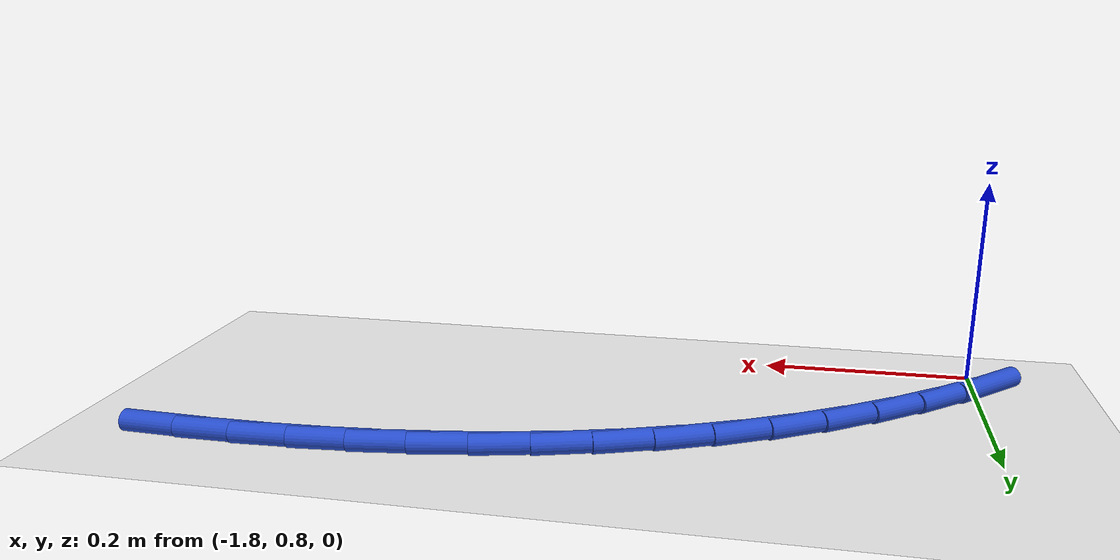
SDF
<sdf version="1.6">
 <world name="default">
  <model name="ground_plane">
   <static>1</static>
   <link name="link">
    <collision name="collision">
     <geometry><plane><normal>0 0 1</normal><size>100 100</size></plane></geometry>
     <surface><friction><ode><mu>100</mu><mu2>50</mu2></ode></friction></surface>
    </collision>
    <visual name="visual">
     <cast_shadows>0</cast_shadows>
     <geometry><plane><normal>0 0 1</normal><size>100 100</size></plane></geometry>
     <material>
      <script><uri>file://media/materials/scripts/gazebo.material</uri><name>Gazebo/WhiteGlow</name></script>
     </material>
    </visual>
   </link>
  </model>
  <model name="line">
   <link name="link_32">
    <pose>-1.0805285014210664 1.0707819714232343 0.01 0 1.57 -0.03612729125618197</pose>
    <collision name="collision">
     <geometry><cylinder><radius>0.01</radius><length>0.08</length></cylinder></geometry>
    </collision>
    <visual name="visual">
     <material>
      <script><name>Gazebo/Blue</name><uri>file://media/materials/scripts/gazebo.material</uri></script>
     </material>
     <geometry><cylinder><radius>0.01</radius><length>0.08</length></cylinder></geometry>
    </visual>
   </link>
   <link name="link_33">
    <pose>-1.1337576701459202 1.0727058341744005 0.01 0 1.57 0.0009839008466263472</pose>
    <collision name="collision">
     <geometry><cylinder><radius>0.01</radius><length>0.08</length></cylinder></geometry>
    </collision>
    <visual name="visual">
     <material>
      <script><name>Gazebo/Blue</name><uri>file://media/materials/scripts/gazebo.material</uri></script>
     </material>
     <geometry><cylinder><radius>0.01</radius><length>0.08</length></cylinder></geometry>
    </visual>
   </link>
   <link name="link_34">
    <pose>-1.1869025457086118 1.0726535448694674 0.01 0 1.57 0.04091917702992606</pose>
    <collision name="collision">
     <geometry><cylinder><radius>0.01</radius><length>0.08</length></cylinder></geometry>
    </collision>
    <visual name="visual">
     <material>
      <script><name>Gazebo/Blue</name><uri>file://media/materials/scripts/gazebo.material</uri></script>
     </material>
     <geometry><cylinder><radius>0.01</radius><length>0.08</length></cylinder></geometry>
    </visual>
   </link>
   <link name="link_35">
    <pose>-1.2398363350835808 1.0704863280553176 0.01 0 1.57 0.08385732257788873</pose>
    <collision name="collision">
     <geometry><cylinder><radius>0.01</radius><length>0.08</length></cylinder></geometry>
    </collision>
    <visual name="visual">
     <material>
      <script><name>Gazebo/Blue</name><uri>file://media/materials/scripts/gazebo.material</uri></script>
     </material>
     <geometry><cylinder><radius>0.01</radius><length>0.08</length></cylinder></geometry>
    </visual>
   </link>
   <link name="link_36">
    <pose>-1.2924322452452683 1.0660654082788334 0.01 0 1.57 0.12996039307803375</pose>
    <collision name="collision">
     <geometry><cylinder><radius>0.01</radius><length>0.08</length></cylinder></geometry>
    </collision>
    <visual name="visual">
     <material>
      <script><name>Gazebo/Blue</name><uri>file://media/materials/scripts/gazebo.material</uri></script>
     </material>
     <geometry><cylinder><radius>0.01</radius><length>0.08</length></cylinder></geometry>
    </visual>
   </link>
   <link name="link_37">
    <pose>-1.344563483168116 1.0592520100868974 0.01 0 1.57 0.1793610827337304</pose>
    <collision name="collision">
     <geometry><cylinder><radius>0.01</radius><length>0.08</length></cylinder></geometry>
    </collision>
    <visual name="visual">
     <material>
      <script><name>Gazebo/Blue</name><uri>file://media/materials/scripts/gazebo.material</uri></script>
     </material>
     <geometry><cylinder><radius>0.01</radius><length>0.08</length></cylinder></geometry>
    </visual>
   </link>
   <link name="link_38">
    <pose>-1.3961032558265651 1.0499073580263925 0.01 0 1.57 0.23214713628937916</pose>
    <collision name="collision">
     <geometry><cylinder><radius>0.01</radius><length>0.08</length></cylinder></geometry>
    </collision>
    <visual name="visual">
     <material>
      <script><name>Gazebo/Blue</name><uri>file://media/materials/scripts/gazebo.material</uri></script>
     </material>
     <geometry><cylinder><radius>0.01</radius><length>0.08</length></cylinder></geometry>
    </visual>
   </link>
   <link name="link_39">
    <pose>-1.4469247701950558 1.0378926766442 0.01 0 1.57 0.2883432096550763</pose>
    <collision name="collision">
     <geometry><cylinder><radius>0.01</radius><length>0.08</length></cylinder></geometry>
    </collision>
    <visual name="visual">
     <material>
      <script><name>Gazebo/Blue</name><uri>file://media/materials/scripts/gazebo.material</uri></script>
     </material>
     <geometry><cylinder><radius>0.01</radius><length>0.08</length></cylinder></geometry>
    </visual>
   </link>
   <link name="link_40">
    <pose>-1.4969012332480298 1.023069190487204 0.01 0 1.57 0.3478912894022178</pose>
    <collision name="collision">
     <geometry><cylinder><radius>0.01</radius><length>0.08</length></cylinder></geometry>
    </collision>
    <visual name="visual">
     <material>
      <script><name>Gazebo/Blue</name><uri>file://media/materials/scripts/gazebo.material</uri></script>
     </material>
     <geometry><cylinder><radius>0.01</radius><length>0.08</length></cylinder></geometry>
    </visual>
   </link>
   <link name="link_41">
    <pose>-1.5459058519599274 1.005298124102286 0.01 0 1.57 0.41052976444630546</pose>
    <collision name="collision">
     <geometry><cylinder><radius>0.01</radius><length>0.08</length></cylinder></geometry>
    </collision>
    <visual name="visual">
     <material>
      <script><name>Gazebo/Blue</name><uri>file://media/materials/scripts/gazebo.material</uri></script>
     </material>
     <geometry><cylinder><radius>0.01</radius><length>0.08</length></cylinder></geometry>
    </visual>
   </link>
   <link name="link_42">
    <pose>-1.5938112705660357 0.9844467546434196 0.01 0 1.57 0.4735691820538563</pose>
    <collision name="collision">
     <geometry><cylinder><radius>0.01</radius><length>0.08</length></cylinder></geometry>
    </collision>
    <visual name="visual">
     <material>
      <script><name>Gazebo/Blue</name><uri>file://media/materials/scripts/gazebo.material</uri></script>
     </material>
     <geometry><cylinder><radius>0.01</radius><length>0.08</length></cylinder></geometry>
    </visual>
   </link>
   <link name="link_43">
    <pose>-1.6404761582128429 0.9605326699739561 0.01 0 1.57 0.5345742691581669</pose>
    <collision name="collision">
     <geometry><cylinder><radius>0.01</radius><length>0.08</length></cylinder></geometry>
    </collision>
    <visual name="visual">
     <material>
      <script><name>Gazebo/Blue</name><uri>file://media/materials/scripts/gazebo.material</uri></script>
     </material>
     <geometry><cylinder><radius>0.01</radius><length>0.08</length></cylinder></geometry>
    </visual>
   </link>
   <link name="link_44">
    <pose>-1.6857446103275422 0.9337302073072198 0.01 0 1.57 0.5937692710894332</pose>
    <collision name="collision">
     <geometry><cylinder><radius>0.01</radius><length>0.08</length></cylinder></geometry>
    </collision>
    <visual name="visual">
     <material>
      <script><name>Gazebo/Blue</name><uri>file://media/materials/scripts/gazebo.material</uri></script>
     </material>
     <geometry><cylinder><radius>0.01</radius><length>0.08</length></cylinder></geometry>
    </visual>
   </link>
   <link name="link_45">
    <pose>-1.7294600398060447 0.9042210449019618 0.01 0 1.57 0.6515246740856997</pose>
    <collision name="collision">
     <geometry><cylinder><radius>0.01</radius><length>0.08</length></cylinder></geometry>
    </collision>
    <visual name="visual">
     <material>
      <script><name>Gazebo/Blue</name><uri>file://media/materials/scripts/gazebo.material</uri></script>
     </material>
     <geometry><cylinder><radius>0.01</radius><length>0.08</length></cylinder></geometry>
    </visual>
   </link>
   <link name="link_46">
    <pose>-1.7714658595442612 0.8721868610169329 0.01 0 1.57 0.7082259630390569</pose>
    <collision name="collision">
     <geometry><cylinder><radius>0.01</radius><length>0.08</length></cylinder></geometry>
    </collision>
    <visual name="visual">
     <material>
      <script><name>Gazebo/Blue</name><uri>file://media/materials/scripts/gazebo.material</uri></script>
     </material>
     <geometry><cylinder><radius>0.01</radius><length>0.08</length></cylinder></geometry>
    </visual>
   </link>
   <link name="link_47">
    <pose>-1.8116054824381 0.8378093339108841 0.01 0 1.57 0.7642690988712172</pose>
    <collision name="collision">
     <geometry><cylinder><radius>0.01</radius><length>0.08</length></cylinder></geometry>
    </collision>
    <visual name="visual">
     <material>
      <script><name>Gazebo/Blue</name><uri>file://media/materials/scripts/gazebo.material</uri></script>
     </material>
     <geometry><cylinder><radius>0.01</radius><length>0.08</length></cylinder></geometry>
    </visual>
   </link>
  </model>
 </world>
</sdf>
